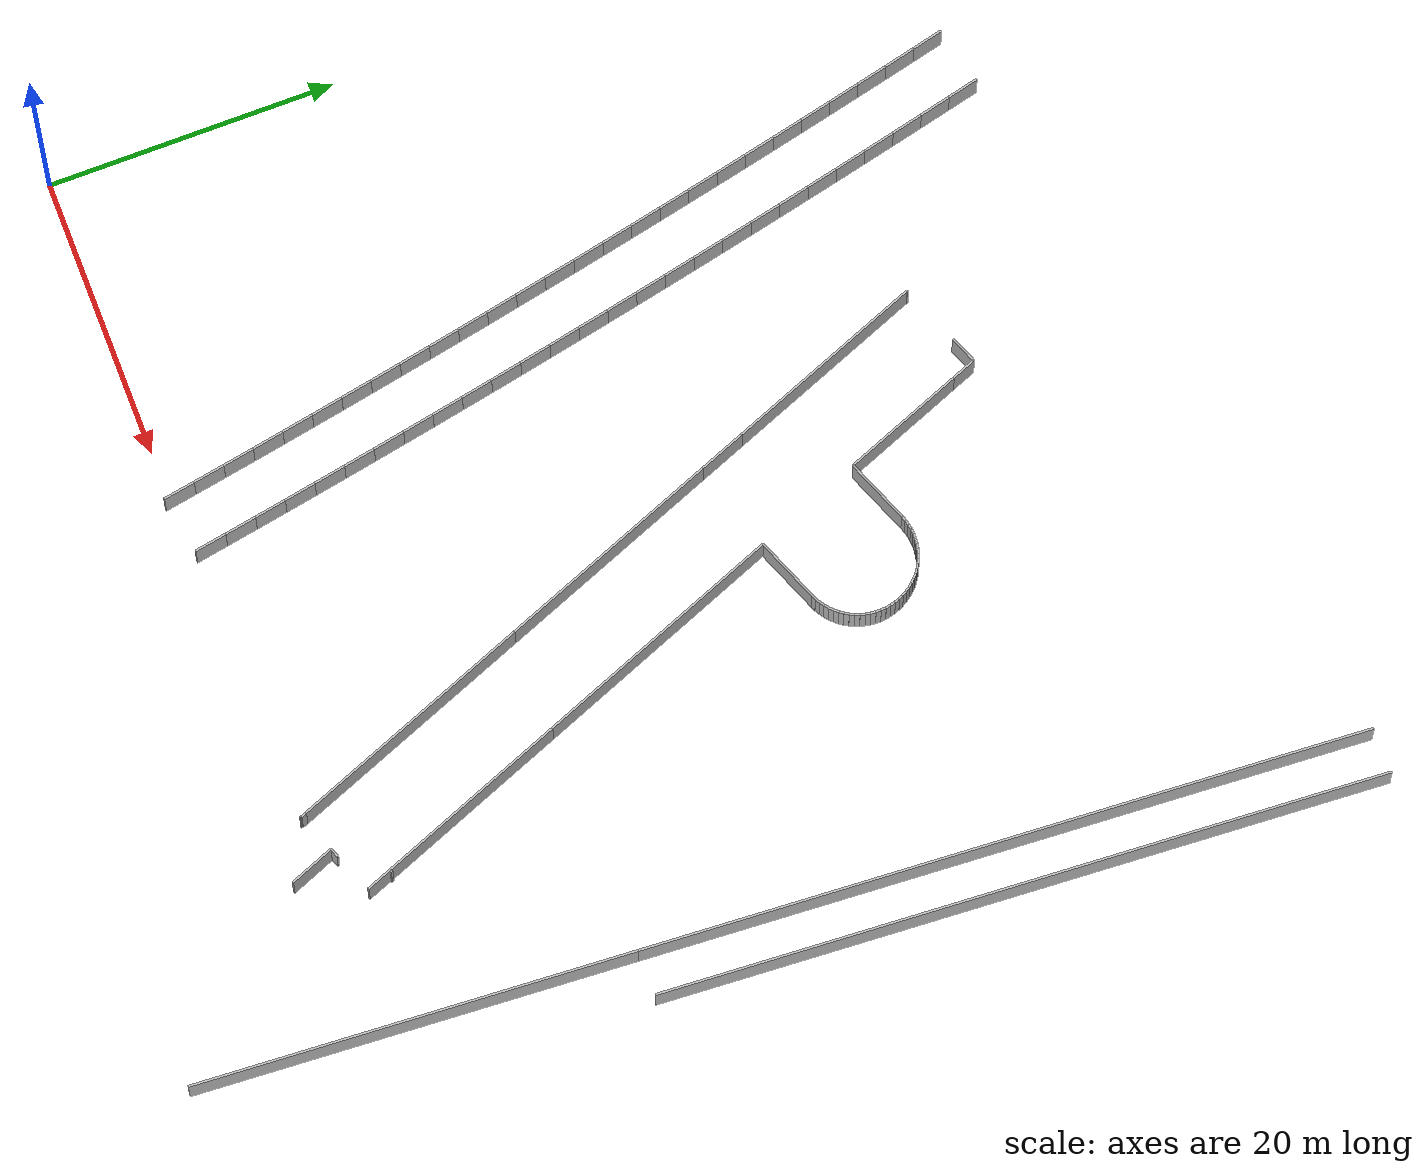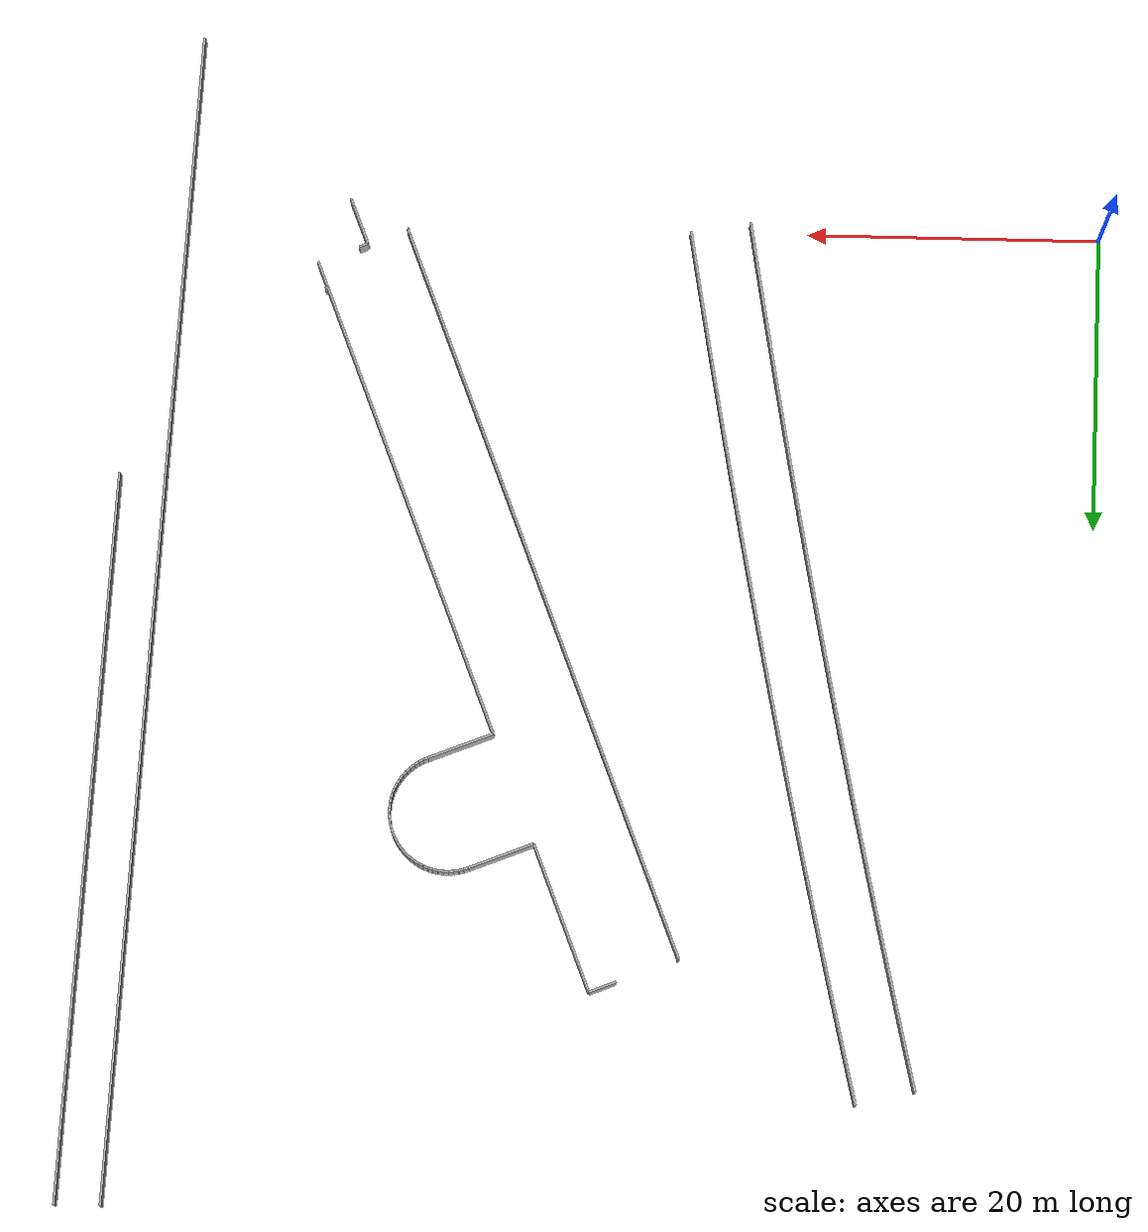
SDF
<sdf version="1.6">
 <model name="sps_2314">
  <static>1</static>
  <allow_auto_disable>0</allow_auto_disable>
  <link name="Wall80">
   <collision name="collision"><geometry><box><size>0.0881448 0.15 2.5</size></box></geometry></collision>
   <visual name="visual">
    <geometry><box><size>0.0881448 0.15 2.5</size></box></geometry>
    <transparency>0.0</transparency>
   </visual>
   <pose>47.404 0.571273 1.25 0 -0 0.37652</pose>
  </link>
  <link name="Wall156">
   <collision name="collision"><geometry><box><size>3.44415 0.15 2.5</size></box></geometry></collision>
   <visual name="visual">
    <geometry><box><size>3.44415 0.15 2.5</size></box></geometry>
    <transparency>0.0</transparency>
   </visual>
   <pose>33.8346 34.9045 1.25 0 0 -1.19321</pose>
  </link>
  <link name="Wall157">
   <collision name="collision"><geometry><box><size>16.5785 0.15 2.5</size></box></geometry></collision>
   <visual name="visual">
    <geometry><box><size>16.5785 0.15 2.5</size></box></geometry>
    <transparency>0.0</transparency>
   </visual>
   <pose>37.5255 25.5984 1.25 0 0 -1.19321</pose>
  </link>
  <link name="Wall158">
   <collision name="collision"><geometry><box><size>18.2175 0.15 2.5</size></box></geometry></collision>
   <visual name="visual">
    <geometry><box><size>18.2175 0.15 2.5</size></box></geometry>
    <transparency>0.0</transparency>
   </visual>
   <pose>43.9397 9.42598 1.25 0 0 -1.19321</pose>
  </link>
  <link name="Wall262">
   <collision name="collision"><geometry><box><size>3.33313 0.15 2.5</size></box></geometry></collision>
   <visual name="visual">
    <geometry><box><size>3.33313 0.15 2.5</size></box></geometry>
    <transparency>0.0</transparency>
   </visual>
   <pose>50.7768 0.116103 1.25 0 0 -1.18645</pose>
  </link>
  <link name="Wall322">
   <collision name="collision"><geometry><box><size>4.74975 0.15 2.5</size></box></geometry></collision>
   <visual name="visual">
    <geometry><box><size>4.74975 0.15 2.5</size></box></geometry>
    <transparency>0.0</transparency>
   </visual>
   <pose>39.9748 43.4954 1.25 0 0 -2.76404</pose>
  </link>
  <link name="Wall323">
   <collision name="collision"><geometry><box><size>0.65133 0.15 2.5</size></box></geometry></collision>
   <visual name="visual">
    <geometry><box><size>0.65133 0.15 2.5</size></box></geometry>
    <transparency>0.0</transparency>
   </visual>
   <pose>50.4546 1.7812 1.25 0 -0 0.377757</pose>
  </link>
  <link name="Wall387">
   <collision name="collision"><geometry><box><size>1.81498 0.15 2.5</size></box></geometry></collision>
   <visual name="visual">
    <geometry><box><size>1.81498 0.15 2.5</size></box></geometry>
    <transparency>0.0</transparency>
   </visual>
   <pose>34.1348 51.7776 1.25 0 0 -1.19318</pose>
  </link>
  <link name="Wall388">
   <collision name="collision"><geometry><box><size>8.94427 0.15 2.5</size></box></geometry></collision>
   <visual name="visual">
    <geometry><box><size>8.94427 0.15 2.5</size></box></geometry>
    <transparency>0.0</transparency>
   </visual>
   <pose>36.1183 46.7769 1.25 0 0 -1.19318</pose>
  </link>
  <link name="Wall389">
   <collision name="collision"><geometry><box><size>18.6084 0.15 2.5</size></box></geometry></collision>
   <visual name="visual">
    <geometry><box><size>18.6084 0.15 2.5</size></box></geometry>
    <transparency>0.0</transparency>
   </visual>
   <pose>44.1558 26.5383 1.25 0 0 -1.19216</pose>
  </link>
  <link name="Wall390">
   <collision name="collision"><geometry><box><size>16.0313 0.15 2.5</size></box></geometry></collision>
   <visual name="visual">
    <geometry><box><size>16.0313 0.15 2.5</size></box></geometry>
    <transparency>0.0</transparency>
   </visual>
   <pose>50.5581 10.4452 1.25 0 0 -1.19216</pose>
  </link>
  <link name="Wall488">
   <collision name="collision"><geometry><box><size>4.75138 0.15 2.5</size></box></geometry></collision>
   <visual name="visual">
    <geometry><box><size>4.75138 0.15 2.5</size></box></geometry>
    <transparency>0.0</transparency>
   </visual>
   <pose>42.9249 36.0592 1.25 0 -0 0.377513</pose>
  </link>
  <link name="Wall490">
   <collision name="collision"><geometry><box><size>0.233288 0.15 2.5</size></box></geometry></collision>
   <visual name="visual">
    <geometry><box><size>0.233288 0.15 2.5</size></box></geometry>
    <transparency>0.0</transparency>
   </visual>
   <pose>52.8953 4.79307 1.25 0 -0 0.377543</pose>
  </link>
  <link name="Wall585">
   <collision name="collision"><geometry><box><size>14.7591 0.15 2.5</size></box></geometry></collision>
   <visual name="visual">
    <geometry><box><size>14.7591 0.15 2.5</size></box></geometry>
    <transparency>0.0</transparency>
   </visual>
   <pose>30.4788 43.3649 1.25 0 0 -1.19318</pose>
  </link>
  <link name="Wall586">
   <collision name="collision"><geometry><box><size>1.98101 0.15 2.5</size></box></geometry></collision>
   <visual name="visual">
    <geometry><box><size>1.98101 0.15 2.5</size></box></geometry>
    <transparency>0.0</transparency>
   </visual>
   <pose>32.8796 52.2558 1.25 0 -0 0.377714</pose>
  </link>
  <link name="Wall587">
   <collision name="collision"><geometry><box><size>0.39949 0.15 2.5</size></box></geometry></collision>
   <visual name="visual">
    <geometry><box><size>0.39949 0.15 2.5</size></box></geometry>
    <transparency>0.0</transparency>
   </visual>
   <pose>47.3715 0.773177 1.25 0 0 -1.19355</pose>
  </link>
  <link name="Wall589">
   <collision name="collision"><geometry><box><size>50.0856 0.15 2.5</size></box></geometry></collision>
   <visual name="visual">
    <geometry><box><size>50.0856 0.15 2.5</size></box></geometry>
    <transparency>0.0</transparency>
   </visual>
   <pose>65.0047 42.8931 1.25 0 0 -1.62928</pose>
  </link>
  <link name="Wall590">
   <collision name="collision"><geometry><box><size>30.3164 0.15 2.5</size></box></geometry></collision>
   <visual name="visual">
    <geometry><box><size>30.3164 0.15 2.5</size></box></geometry>
    <transparency>0.0</transparency>
   </visual>
   <pose>62.6547 2.76079 1.25 0 0 -1.62928</pose>
  </link>
  <link name="Wall663">
   <collision name="collision"><geometry><box><size>0.119337 0.15 2.5</size></box></geometry></collision>
   <visual name="visual">
    <geometry><box><size>0.119337 0.15 2.5</size></box></geometry>
    <transparency>0.0</transparency>
   </visual>
   <pose>27.8133 50.2464 1.25 0 -0 0.375473</pose>
  </link>
  <link name="Wall668">
   <collision name="collision"><geometry><box><size>50.0856 0.15 2.5</size></box></geometry></collision>
   <visual name="visual">
    <geometry><box><size>50.0856 0.15 2.5</size></box></geometry>
    <transparency>0.0</transparency>
   </visual>
   <pose>68.1501 42.8931 1.25 0 0 -1.62929</pose>
  </link>
  <link name="Wall4661">
   <collision name="collision"><geometry><box><size>2.25472 0.15 2.5</size></box></geometry></collision>
   <visual name="visual">
    <geometry><box><size>2.25472 0.15 2.5</size></box></geometry>
    <transparency>0.0</transparency>
   </visual>
   <pose>27.8527 1.40709 1.25 0 -0 1.74643</pose>
  </link>
  <link name="Wall4662">
   <collision name="collision"><geometry><box><size>2.25462 0.15 2.5</size></box></geometry></collision>
   <visual name="visual">
    <geometry><box><size>2.25462 0.15 2.5</size></box></geometry>
    <transparency>0.0</transparency>
   </visual>
   <pose>27.456 3.6266 1.25 0 -0 1.74881</pose>
  </link>
  <link name="Wall4663">
   <collision name="collision"><geometry><box><size>2.25462 0.15 2.5</size></box></geometry></collision>
   <visual name="visual">
    <geometry><box><size>2.25462 0.15 2.5</size></box></geometry>
    <transparency>0.0</transparency>
   </visual>
   <pose>27.0541 5.84511 1.25 0 -0 1.75123</pose>
  </link>
  <link name="Wall4664">
   <collision name="collision"><geometry><box><size>2.25472 0.15 2.5</size></box></geometry></collision>
   <visual name="visual">
    <geometry><box><size>2.25472 0.15 2.5</size></box></geometry>
    <transparency>0.0</transparency>
   </visual>
   <pose>26.6469 8.0627 1.25 0 -0 1.75356</pose>
  </link>
  <link name="Wall4665">
   <collision name="collision"><geometry><box><size>2.25452 0.15 2.5</size></box></geometry></collision>
   <visual name="visual">
    <geometry><box><size>2.25452 0.15 2.5</size></box></geometry>
    <transparency>0.0</transparency>
   </visual>
   <pose>26.2345 10.2793 1.25 0 -0 1.75592</pose>
  </link>
  <link name="Wall4666">
   <collision name="collision"><geometry><box><size>2.25475 0.15 2.5</size></box></geometry></collision>
   <visual name="visual">
    <geometry><box><size>2.25475 0.15 2.5</size></box></geometry>
    <transparency>0.0</transparency>
   </visual>
   <pose>25.8169 12.4949 1.25 0 -0 1.75835</pose>
  </link>
  <link name="Wall4667">
   <collision name="collision"><geometry><box><size>2.25399 0.15 2.5</size></box></geometry></collision>
   <visual name="visual">
    <geometry><box><size>2.25399 0.15 2.5</size></box></geometry>
    <transparency>0.0</transparency>
   </visual>
   <pose>25.3937 14.7092 1.25 0 -0 1.76092</pose>
  </link>
  <link name="Wall4668">
   <collision name="collision"><geometry><box><size>2.2547 0.15 2.5</size></box></geometry></collision>
   <visual name="visual">
    <geometry><box><size>2.2547 0.15 2.5</size></box></geometry>
    <transparency>0.0</transparency>
   </visual>
   <pose>24.9654 16.9225 1.25 0 -0 1.76296</pose>
  </link>
  <link name="Wall4669">
   <collision name="collision"><geometry><box><size>2.2546 0.15 2.5</size></box></geometry></collision>
   <visual name="visual">
    <geometry><box><size>2.2546 0.15 2.5</size></box></geometry>
    <transparency>0.0</transparency>
   </visual>
   <pose>24.5321 19.1351 1.25 0 -0 1.76542</pose>
  </link>
  <link name="Wall4670">
   <collision name="collision"><geometry><box><size>2.25467 0.15 2.5</size></box></geometry></collision>
   <visual name="visual">
    <geometry><box><size>2.25467 0.15 2.5</size></box></geometry>
    <transparency>0.0</transparency>
   </visual>
   <pose>24.0933 21.3466 1.25 0 -0 1.76793</pose>
  </link>
  <link name="Wall4671">
   <collision name="collision"><geometry><box><size>2.25445 0.15 2.5</size></box></geometry></collision>
   <visual name="visual">
    <geometry><box><size>2.25445 0.15 2.5</size></box></geometry>
    <transparency>0.0</transparency>
   </visual>
   <pose>23.6492 23.557 1.25 0 -0 1.77021</pose>
  </link>
  <link name="Wall4672">
   <collision name="collision"><geometry><box><size>2.25471 0.15 2.5</size></box></geometry></collision>
   <visual name="visual">
    <geometry><box><size>2.25471 0.15 2.5</size></box></geometry>
    <transparency>0.0</transparency>
   </visual>
   <pose>23.2 25.7664 1.25 0 -0 1.77253</pose>
  </link>
  <link name="Wall4673">
   <collision name="collision"><geometry><box><size>2.25463 0.15 2.5</size></box></geometry></collision>
   <visual name="visual">
    <geometry><box><size>2.25463 0.15 2.5</size></box></geometry>
    <transparency>0.0</transparency>
   </visual>
   <pose>22.7456 27.9748 1.25 0 -0 1.77492</pose>
  </link>
  <link name="Wall4674">
   <collision name="collision"><geometry><box><size>2.25471 0.15 2.5</size></box></geometry></collision>
   <visual name="visual">
    <geometry><box><size>2.25471 0.15 2.5</size></box></geometry>
    <transparency>0.0</transparency>
   </visual>
   <pose>22.2858 30.1821 1.25 0 -0 1.77734</pose>
  </link>
  <link name="Wall4675">
   <collision name="collision"><geometry><box><size>2.25465 0.15 2.5</size></box></geometry></collision>
   <visual name="visual">
    <geometry><box><size>2.25465 0.15 2.5</size></box></geometry>
    <transparency>0.0</transparency>
   </visual>
   <pose>21.8209 32.3883 1.25 0 -0 1.7797</pose>
  </link>
  <link name="Wall4676">
   <collision name="collision"><geometry><box><size>2.25454 0.15 2.5</size></box></geometry></collision>
   <visual name="visual">
    <geometry><box><size>2.25454 0.15 2.5</size></box></geometry>
    <transparency>0.0</transparency>
   </visual>
   <pose>21.3507 34.5933 1.25 0 -0 1.78207</pose>
  </link>
  <link name="Wall4677">
   <collision name="collision"><geometry><box><size>2.25467 0.15 2.5</size></box></geometry></collision>
   <visual name="visual">
    <geometry><box><size>2.25467 0.15 2.5</size></box></geometry>
    <transparency>0.0</transparency>
   </visual>
   <pose>20.8752 36.7972 1.25 0 -0 1.78452</pose>
  </link>
  <link name="Wall4678">
   <collision name="collision"><geometry><box><size>2.25482 0.15 2.5</size></box></geometry></collision>
   <visual name="visual">
    <geometry><box><size>2.25482 0.15 2.5</size></box></geometry>
    <transparency>0.0</transparency>
   </visual>
   <pose>20.3944 39.0001 1.25 0 -0 1.78686</pose>
  </link>
  <link name="Wall4679">
   <collision name="collision"><geometry><box><size>2.25435 0.15 2.5</size></box></geometry></collision>
   <visual name="visual">
    <geometry><box><size>2.25435 0.15 2.5</size></box></geometry>
    <transparency>0.0</transparency>
   </visual>
   <pose>19.9085 41.2017 1.25 0 -0 1.78918</pose>
  </link>
  <link name="Wall4680">
   <collision name="collision"><geometry><box><size>2.25458 0.15 2.5</size></box></geometry></collision>
   <visual name="visual">
    <geometry><box><size>2.25458 0.15 2.5</size></box></geometry>
    <transparency>0.0</transparency>
   </visual>
   <pose>19.4174 43.402 1.25 0 -0 1.79162</pose>
  </link>
  <link name="Wall4681">
   <collision name="collision"><geometry><box><size>2.25469 0.15 2.5</size></box></geometry></collision>
   <visual name="visual">
    <geometry><box><size>2.25469 0.15 2.5</size></box></geometry>
    <transparency>0.0</transparency>
   </visual>
   <pose>18.921 45.6013 1.25 0 -0 1.79394</pose>
  </link>
  <link name="Wall4682">
   <collision name="collision"><geometry><box><size>2.25436 0.15 2.5</size></box></geometry></collision>
   <visual name="visual">
    <geometry><box><size>2.25436 0.15 2.5</size></box></geometry>
    <transparency>0.0</transparency>
   </visual>
   <pose>18.4193 47.7993 1.25 0 -0 1.79645</pose>
  </link>
  <link name="Wall4683">
   <collision name="collision"><geometry><box><size>2.25453 0.15 2.5</size></box></geometry></collision>
   <visual name="visual">
    <geometry><box><size>2.25453 0.15 2.5</size></box></geometry>
    <transparency>0.0</transparency>
   </visual>
   <pose>17.9123 49.996 1.25 0 -0 1.79882</pose>
  </link>
  <link name="Wall4684">
   <collision name="collision"><geometry><box><size>2.25472 0.15 2.5</size></box></geometry></collision>
   <visual name="visual">
    <geometry><box><size>2.25472 0.15 2.5</size></box></geometry>
    <transparency>0.0</transparency>
   </visual>
   <pose>17.4002 52.1917 1.25 0 -0 1.80097</pose>
  </link>
  <link name="Wall4685">
   <collision name="collision"><geometry><box><size>2.25456 0.15 2.5</size></box></geometry></collision>
   <visual name="visual">
    <geometry><box><size>2.25456 0.15 2.5</size></box></geometry>
    <transparency>0.0</transparency>
   </visual>
   <pose>16.883 54.3862 1.25 0 -0 1.80352</pose>
  </link>
  <link name="Wall4686">
   <collision name="collision"><geometry><box><size>2.25455 0.15 2.5</size></box></geometry></collision>
   <visual name="visual">
    <geometry><box><size>2.25455 0.15 2.5</size></box></geometry>
    <transparency>0.0</transparency>
   </visual>
   <pose>16.3606 56.5794 1.25 0 -0 1.80583</pose>
  </link>
  <link name="Wall4687">
   <collision name="collision"><geometry><box><size>2.25468 0.15 2.5</size></box></geometry></collision>
   <visual name="visual">
    <geometry><box><size>2.25468 0.15 2.5</size></box></geometry>
    <transparency>0.0</transparency>
   </visual>
   <pose>15.8328 58.7714 1.25 0 -0 1.80826</pose>
  </link>
  <link name="Wall6386">
   <collision name="collision"><geometry><box><size>2.24468 0.15 2.5</size></box></geometry></collision>
   <visual name="visual">
    <geometry><box><size>2.24468 0.15 2.5</size></box></geometry>
    <transparency>0.0</transparency>
   </visual>
   <pose>23.7769 0.683394 1.25 0 -0 1.74643</pose>
  </link>
  <link name="Wall6387">
   <collision name="collision"><geometry><box><size>2.24487 0.15 2.5</size></box></geometry></collision>
   <visual name="visual">
    <geometry><box><size>2.24487 0.15 2.5</size></box></geometry>
    <transparency>0.0</transparency>
   </visual>
   <pose>23.3821 2.89317 1.25 0 -0 1.74876</pose>
  </link>
  <link name="Wall6388">
   <collision name="collision"><geometry><box><size>2.2449 0.15 2.5</size></box></geometry></collision>
   <visual name="visual">
    <geometry><box><size>2.2449 0.15 2.5</size></box></geometry>
    <transparency>0.0</transparency>
   </visual>
   <pose>22.982 5.1021 1.25 0 -0 1.75127</pose>
  </link>
  <link name="Wall6389">
   <collision name="collision"><geometry><box><size>2.24452 0.15 2.5</size></box></geometry></collision>
   <visual name="visual">
    <geometry><box><size>2.24452 0.15 2.5</size></box></geometry>
    <transparency>0.0</transparency>
   </visual>
   <pose>22.5766 7.30989 1.25 0 -0 1.75351</pose>
  </link>
  <link name="Wall6390">
   <collision name="collision"><geometry><box><size>2.24496 0.15 2.5</size></box></geometry></collision>
   <visual name="visual">
    <geometry><box><size>2.24496 0.15 2.5</size></box></geometry>
    <transparency>0.0</transparency>
   </visual>
   <pose>22.166 9.51677 1.25 0 -0 1.75591</pose>
  </link>
  <link name="Wall6391">
   <collision name="collision"><geometry><box><size>2.24478 0.15 2.5</size></box></geometry></collision>
   <visual name="visual">
    <geometry><box><size>2.24478 0.15 2.5</size></box></geometry>
    <transparency>0.0</transparency>
   </visual>
   <pose>21.7502 11.7228 1.25 0 -0 1.75828</pose>
  </link>
  <link name="Wall6392">
   <collision name="collision"><geometry><box><size>2.24477 0.15 2.5</size></box></geometry></collision>
   <visual name="visual">
    <geometry><box><size>2.24477 0.15 2.5</size></box></geometry>
    <transparency>0.0</transparency>
   </visual>
   <pose>21.3292 13.9277 1.25 0 -0 1.76072</pose>
  </link>
  <link name="Wall6393">
   <collision name="collision"><geometry><box><size>2.24441 0.15 2.5</size></box></geometry></collision>
   <visual name="visual">
    <geometry><box><size>2.24441 0.15 2.5</size></box></geometry>
    <transparency>0.0</transparency>
   </visual>
   <pose>20.9025 16.1314 1.25 0 -0 1.76332</pose>
  </link>
  <link name="Wall6394">
   <collision name="collision"><geometry><box><size>2.24456 0.15 2.5</size></box></geometry></collision>
   <visual name="visual">
    <geometry><box><size>2.24456 0.15 2.5</size></box></geometry>
    <transparency>0.0</transparency>
   </visual>
   <pose>20.4708 18.334 1.25 0 -0 1.76536</pose>
  </link>
  <link name="Wall6395">
   <collision name="collision"><geometry><box><size>2.24507 0.15 2.5</size></box></geometry></collision>
   <visual name="visual">
    <geometry><box><size>2.24507 0.15 2.5</size></box></geometry>
    <transparency>0.0</transparency>
   </visual>
   <pose>20.034 20.5359 1.25 0 -0 1.76789</pose>
  </link>
  <link name="Wall6396">
   <collision name="collision"><geometry><box><size>2.24466 0.15 2.5</size></box></geometry></collision>
   <visual name="visual">
    <geometry><box><size>2.24466 0.15 2.5</size></box></geometry>
    <transparency>0.0</transparency>
   </visual>
   <pose>19.5919 22.7368 1.25 0 -0 1.77018</pose>
  </link>
  <link name="Wall6397">
   <collision name="collision"><geometry><box><size>2.24474 0.15 2.5</size></box></geometry></collision>
   <visual name="visual">
    <geometry><box><size>2.24474 0.15 2.5</size></box></geometry>
    <transparency>0.0</transparency>
   </visual>
   <pose>19.1448 24.9365 1.25 0 -0 1.77253</pose>
  </link>
  <link name="Wall6398">
   <collision name="collision"><geometry><box><size>2.24482 0.15 2.5</size></box></geometry></collision>
   <visual name="visual">
    <geometry><box><size>2.24482 0.15 2.5</size></box></geometry>
    <transparency>0.0</transparency>
   </visual>
   <pose>18.6923 27.1352 1.25 0 -0 1.77499</pose>
  </link>
  <link name="Wall6399">
   <collision name="collision"><geometry><box><size>2.24493 0.15 2.5</size></box></geometry></collision>
   <visual name="visual">
    <geometry><box><size>2.24493 0.15 2.5</size></box></geometry>
    <transparency>0.0</transparency>
   </visual>
   <pose>18.2345 29.3329 1.25 0 -0 1.77737</pose>
  </link>
  <link name="Wall6400">
   <collision name="collision"><geometry><box><size>2.24458 0.15 2.5</size></box></geometry></collision>
   <visual name="visual">
    <geometry><box><size>2.24458 0.15 2.5</size></box></geometry>
    <transparency>0.0</transparency>
   </visual>
   <pose>17.7715 31.5294 1.25 0 -0 1.77965</pose>
  </link>
  <link name="Wall6401">
   <collision name="collision"><geometry><box><size>2.24497 0.15 2.5</size></box></geometry></collision>
   <visual name="visual">
    <geometry><box><size>2.24497 0.15 2.5</size></box></geometry>
    <transparency>0.0</transparency>
   </visual>
   <pose>17.3033 33.7248 1.25 0 -0 1.78217</pose>
  </link>
  <link name="Wall6402">
   <collision name="collision"><geometry><box><size>2.24461 0.15 2.5</size></box></geometry></collision>
   <visual name="visual">
    <geometry><box><size>2.24461 0.15 2.5</size></box></geometry>
    <transparency>0.0</transparency>
   </visual>
   <pose>16.8299 35.9191 1.25 0 -0 1.78438</pose>
  </link>
  <link name="Wall6403">
   <collision name="collision"><geometry><box><size>2.24481 0.15 2.5</size></box></geometry></collision>
   <visual name="visual">
    <geometry><box><size>2.24481 0.15 2.5</size></box></geometry>
    <transparency>0.0</transparency>
   </visual>
   <pose>16.3515 38.1122 1.25 0 -0 1.78683</pose>
  </link>
  <link name="Wall6404">
   <collision name="collision"><geometry><box><size>2.24491 0.15 2.5</size></box></geometry></collision>
   <visual name="visual">
    <geometry><box><size>2.24491 0.15 2.5</size></box></geometry>
    <transparency>0.0</transparency>
   </visual>
   <pose>15.8677 40.3043 1.25 0 -0 1.78919</pose>
  </link>
  <link name="Wall6405">
   <collision name="collision"><geometry><box><size>2.24473 0.15 2.5</size></box></geometry></collision>
   <visual name="visual">
    <geometry><box><size>2.24473 0.15 2.5</size></box></geometry>
    <transparency>0.0</transparency>
   </visual>
   <pose>15.3786 42.4952 1.25 0 -0 1.79169</pose>
  </link>
  <link name="Wall6406">
   <collision name="collision"><geometry><box><size>2.2447 0.15 2.5</size></box></geometry></collision>
   <visual name="visual">
    <geometry><box><size>2.2447 0.15 2.5</size></box></geometry>
    <transparency>0.0</transparency>
   </visual>
   <pose>14.8842 44.6848 1.25 0 -0 1.79398</pose>
  </link>
  <link name="Wall6407">
   <collision name="collision"><geometry><box><size>2.24483 0.15 2.5</size></box></geometry></collision>
   <visual name="visual">
    <geometry><box><size>2.24483 0.15 2.5</size></box></geometry>
    <transparency>0.0</transparency>
   </visual>
   <pose>14.3848 46.8733 1.25 0 -0 1.79631</pose>
  </link>
  <link name="Wall6408">
   <collision name="collision"><geometry><box><size>2.24446 0.15 2.5</size></box></geometry></collision>
   <visual name="visual">
    <geometry><box><size>2.24446 0.15 2.5</size></box></geometry>
    <transparency>0.0</transparency>
   </visual>
   <pose>13.8803 49.0605 1.25 0 -0 1.79874</pose>
  </link>
  <link name="Wall6409">
   <collision name="collision"><geometry><box><size>2.24468 0.15 2.5</size></box></geometry></collision>
   <visual name="visual">
    <geometry><box><size>2.24468 0.15 2.5</size></box></geometry>
    <transparency>0.0</transparency>
   </visual>
   <pose>13.3704 51.2464 1.25 0 -0 1.80121</pose>
  </link>
  <link name="Wall6410">
   <collision name="collision"><geometry><box><size>2.24489 0.15 2.5</size></box></geometry></collision>
   <visual name="visual">
    <geometry><box><size>2.24489 0.15 2.5</size></box></geometry>
    <transparency>0.0</transparency>
   </visual>
   <pose>12.8553 53.4313 1.25 0 -0 1.80336</pose>
  </link>
  <link name="Wall6411">
   <collision name="collision"><geometry><box><size>2.24476 0.15 2.5</size></box></geometry></collision>
   <visual name="visual">
    <geometry><box><size>2.24476 0.15 2.5</size></box></geometry>
    <transparency>0.0</transparency>
   </visual>
   <pose>12.3351 55.615 1.25 0 -0 1.80595</pose>
  </link>
  <link name="Wall6412">
   <collision name="collision"><geometry><box><size>2.24475 0.15 2.5</size></box></geometry></collision>
   <visual name="visual">
    <geometry><box><size>2.24475 0.15 2.5</size></box></geometry>
    <transparency>0.0</transparency>
   </visual>
   <pose>11.8097 57.7974 1.25 0 -0 1.80813</pose>
  </link>
  <link name="Wall7351">
   <collision name="collision"><geometry><box><size>0.348288 0.15 2.5</size></box></geometry></collision>
   <visual name="visual">
    <geometry><box><size>0.348288 0.15 2.5</size></box></geometry>
    <transparency>0.0</transparency>
   </visual>
   <pose>45.292 37.0066 1.25 0 -0 0.424452</pose>
  </link>
  <link name="Wall7352">
   <collision name="collision"><geometry><box><size>0.348329 0.15 2.5</size></box></geometry></collision>
   <visual name="visual">
    <geometry><box><size>0.348329 0.15 2.5</size></box></geometry>
    <transparency>0.0</transparency>
   </visual>
   <pose>45.6026 37.1635 1.25 0 -0 0.510996</pose>
  </link>
  <link name="Wall7353">
   <collision name="collision"><geometry><box><size>0.348315 0.15 2.5</size></box></geometry></collision>
   <visual name="visual">
    <geometry><box><size>0.348315 0.15 2.5</size></box></geometry>
    <transparency>0.0</transparency>
   </visual>
   <pose>45.8984 37.3468 1.25 0 -0 0.598452</pose>
  </link>
  <link name="Wall7354">
   <collision name="collision"><geometry><box><size>0.348333 0.15 2.5</size></box></geometry></collision>
   <visual name="visual">
    <geometry><box><size>0.348333 0.15 2.5</size></box></geometry>
    <transparency>0.0</transparency>
   </visual>
   <pose>46.1771 37.5552 1.25 0 -0 0.685742</pose>
  </link>
  <link name="Wall7355">
   <collision name="collision"><geometry><box><size>0.348231 0.15 2.5</size></box></geometry></collision>
   <visual name="visual">
    <geometry><box><size>0.348231 0.15 2.5</size></box></geometry>
    <transparency>0.0</transparency>
   </visual>
   <pose>46.4365 37.787 1.25 0 -0 0.772508</pose>
  </link>
  <link name="Wall7356">
   <collision name="collision"><geometry><box><size>0.348428 0.15 2.5</size></box></geometry></collision>
   <visual name="visual">
    <geometry><box><size>0.348428 0.15 2.5</size></box></geometry>
    <transparency>0.0</transparency>
   </visual>
   <pose>46.6749 38.0405 1.25 0 -0 0.859662</pose>
  </link>
  <link name="Wall7357">
   <collision name="collision"><geometry><box><size>0.348312 0.15 2.5</size></box></geometry></collision>
   <visual name="visual">
    <geometry><box><size>0.348312 0.15 2.5</size></box></geometry>
    <transparency>0.0</transparency>
   </visual>
   <pose>46.8903 38.3139 1.25 0 -0 0.947308</pose>
  </link>
  <link name="Wall7358">
   <collision name="collision"><geometry><box><size>0.348254 0.15 2.5</size></box></geometry></collision>
   <visual name="visual">
    <geometry><box><size>0.348254 0.15 2.5</size></box></geometry>
    <transparency>0.0</transparency>
   </visual>
   <pose>47.0811 38.6049 1.25 0 -0 1.03356</pose>
  </link>
  <link name="Wall7359">
   <collision name="collision"><geometry><box><size>0.348245 0.15 2.5</size></box></geometry></collision>
   <visual name="visual">
    <geometry><box><size>0.348245 0.15 2.5</size></box></geometry>
    <transparency>0.0</transparency>
   </visual>
   <pose>47.246 38.9113 1.25 0 -0 1.12094</pose>
  </link>
  <link name="Wall7360">
   <collision name="collision"><geometry><box><size>0.348461 0.15 2.5</size></box></geometry></collision>
   <visual name="visual">
    <geometry><box><size>0.348461 0.15 2.5</size></box></geometry>
    <transparency>0.0</transparency>
   </visual>
   <pose>47.3835 39.231 1.25 0 -0 1.20821</pose>
  </link>
  <link name="Wall7361">
   <collision name="collision"><geometry><box><size>0.348299 0.15 2.5</size></box></geometry></collision>
   <visual name="visual">
    <geometry><box><size>0.348299 0.15 2.5</size></box></geometry>
    <transparency>0.0</transparency>
   </visual>
   <pose>47.4926 39.5615 1.25 0 -0 1.29572</pose>
  </link>
  <link name="Wall7362">
   <collision name="collision"><geometry><box><size>0.348231 0.15 2.5</size></box></geometry></collision>
   <visual name="visual">
    <geometry><box><size>0.348231 0.15 2.5</size></box></geometry>
    <transparency>0.0</transparency>
   </visual>
   <pose>47.5726 39.9001 1.25 0 -0 1.38196</pose>
  </link>
  <link name="Wall7363">
   <collision name="collision"><geometry><box><size>0.348342 0.15 2.5</size></box></geometry></collision>
   <visual name="visual">
    <geometry><box><size>0.348342 0.15 2.5</size></box></geometry>
    <transparency>0.0</transparency>
   </visual>
   <pose>47.6229 40.2444 1.25 0 -0 1.46952</pose>
  </link>
  <link name="Wall7364">
   <collision name="collision"><geometry><box><size>0.348425 0.15 2.5</size></box></geometry></collision>
   <visual name="visual">
    <geometry><box><size>0.348425 0.15 2.5</size></box></geometry>
    <transparency>0.0</transparency>
   </visual>
   <pose>47.643 40.5919 1.25 0 -0 1.55643</pose>
  </link>
  <link name="Wall7365">
   <collision name="collision"><geometry><box><size>0.348156 0.15 2.5</size></box></geometry></collision>
   <visual name="visual">
    <geometry><box><size>0.348156 0.15 2.5</size></box></geometry>
    <transparency>0.0</transparency>
   </visual>
   <pose>47.6328 40.9397 1.25 0 -0 1.64379</pose>
  </link>
  <link name="Wall7366">
   <collision name="collision"><geometry><box><size>0.348459 0.15 2.5</size></box></geometry></collision>
   <visual name="visual">
    <geometry><box><size>0.348459 0.15 2.5</size></box></geometry>
    <transparency>0.0</transparency>
   </visual>
   <pose>47.5923 41.2853 1.25 0 -0 1.73105</pose>
  </link>
  <link name="Wall7367">
   <collision name="collision"><geometry><box><size>0.348172 0.15 2.5</size></box></geometry></collision>
   <visual name="visual">
    <geometry><box><size>0.348172 0.15 2.5</size></box></geometry>
    <transparency>0.0</transparency>
   </visual>
   <pose>47.5219 41.6261 1.25 0 -0 1.81803</pose>
  </link>
  <link name="Wall7368">
   <collision name="collision"><geometry><box><size>0.348467 0.15 2.5</size></box></geometry></collision>
   <visual name="visual">
    <geometry><box><size>0.348467 0.15 2.5</size></box></geometry>
    <transparency>0.0</transparency>
   </visual>
   <pose>47.4222 41.9595 1.25 0 -0 1.90468</pose>
  </link>
  <link name="Wall7369">
   <collision name="collision"><geometry><box><size>0.348252 0.15 2.5</size></box></geometry></collision>
   <visual name="visual">
    <geometry><box><size>0.348252 0.15 2.5</size></box></geometry>
    <transparency>0.0</transparency>
   </visual>
   <pose>47.2939 42.283 1.25 0 -0 1.99203</pose>
  </link>
  <link name="Wall7370">
   <collision name="collision"><geometry><box><size>0.348292 0.15 2.5</size></box></geometry></collision>
   <visual name="visual">
    <geometry><box><size>0.348292 0.15 2.5</size></box></geometry>
    <transparency>0.0</transparency>
   </visual>
   <pose>47.1379 42.594 1.25 0 -0 2.07944</pose>
  </link>
  <link name="Wall7371">
   <collision name="collision"><geometry><box><size>0.348374 0.15 2.5</size></box></geometry></collision>
   <visual name="visual">
    <geometry><box><size>0.348374 0.15 2.5</size></box></geometry>
    <transparency>0.0</transparency>
   </visual>
   <pose>46.9553 42.8903 1.25 0 -0 2.16638</pose>
  </link>
  <link name="Wall7372">
   <collision name="collision"><geometry><box><size>0.348305 0.15 2.5</size></box></geometry></collision>
   <visual name="visual">
    <geometry><box><size>0.348305 0.15 2.5</size></box></geometry>
    <transparency>0.0</transparency>
   </visual>
   <pose>46.7477 43.1696 1.25 0 -0 2.25367</pose>
  </link>
  <link name="Wall7373">
   <collision name="collision"><geometry><box><size>0.348332 0.15 2.5</size></box></geometry></collision>
   <visual name="visual">
    <geometry><box><size>0.348332 0.15 2.5</size></box></geometry>
    <transparency>0.0</transparency>
   </visual>
   <pose>46.5167 43.4298 1.25 0 -0 2.34033</pose>
  </link>
  <link name="Wall7374">
   <collision name="collision"><geometry><box><size>0.348227 0.15 2.5</size></box></geometry></collision>
   <visual name="visual">
    <geometry><box><size>0.348227 0.15 2.5</size></box></geometry>
    <transparency>0.0</transparency>
   </visual>
   <pose>46.2639 43.6689 1.25 0 -0 2.42764</pose>
  </link>
  <link name="Wall7375">
   <collision name="collision"><geometry><box><size>0.348325 0.15 2.5</size></box></geometry></collision>
   <visual name="visual">
    <geometry><box><size>0.348325 0.15 2.5</size></box></geometry>
    <transparency>0.0</transparency>
   </visual>
   <pose>45.9913 43.8851 1.25 0 -0 2.51446</pose>
  </link>
  <link name="Wall7376">
   <collision name="collision"><geometry><box><size>0.348262 0.15 2.5</size></box></geometry></collision>
   <visual name="visual">
    <geometry><box><size>0.348262 0.15 2.5</size></box></geometry>
    <transparency>0.0</transparency>
   </visual>
   <pose>45.7009 44.0768 1.25 0 -0 2.60192</pose>
  </link>
  <link name="Wall7377">
   <collision name="collision"><geometry><box><size>0.348341 0.15 2.5</size></box></geometry></collision>
   <visual name="visual">
    <geometry><box><size>0.348341 0.15 2.5</size></box></geometry>
    <transparency>0.0</transparency>
   </visual>
   <pose>45.3949 44.2425 1.25 0 -0 2.68876</pose>
  </link>
  <link name="Wall7378">
   <collision name="collision"><geometry><box><size>0.348345 0.15 2.5</size></box></geometry></collision>
   <visual name="visual">
    <geometry><box><size>0.348345 0.15 2.5</size></box></geometry>
    <transparency>0.0</transparency>
   </visual>
   <pose>45.0756 44.3809 1.25 0 -0 2.77644</pose>
  </link>
  <link name="Wall7379">
   <collision name="collision"><geometry><box><size>0.348457 0.15 2.5</size></box></geometry></collision>
   <visual name="visual">
    <geometry><box><size>0.348457 0.15 2.5</size></box></geometry>
    <transparency>0.0</transparency>
   </visual>
   <pose>44.7454 44.491 1.25 0 -0 2.863</pose>
  </link>
  <link name="Wall7380">
   <collision name="collision"><geometry><box><size>0.348153 0.15 2.5</size></box></geometry></collision>
   <visual name="visual">
    <geometry><box><size>0.348153 0.15 2.5</size></box></geometry>
    <transparency>0.0</transparency>
   </visual>
   <pose>44.4069 44.572 1.25 0 -0 2.95021</pose>
  </link>
  <link name="Wall7381">
   <collision name="collision"><geometry><box><size>0.34826 0.15 2.5</size></box></geometry></collision>
   <visual name="visual">
    <geometry><box><size>0.34826 0.15 2.5</size></box></geometry>
    <transparency>0.0</transparency>
   </visual>
   <pose>44.0629 44.6232 1.25 0 -0 3.03748</pose>
  </link>
  <link name="Wall7382">
   <collision name="collision"><geometry><box><size>0.34844 0.15 2.5</size></box></geometry></collision>
   <visual name="visual">
    <geometry><box><size>0.34844 0.15 2.5</size></box></geometry>
    <transparency>0.0</transparency>
   </visual>
   <pose>43.7155 44.6443 1.25 0 -0 3.12443</pose>
  </link>
  <link name="Wall7383">
   <collision name="collision"><geometry><box><size>0.348269 0.15 2.5</size></box></geometry></collision>
   <visual name="visual">
    <geometry><box><size>0.348269 0.15 2.5</size></box></geometry>
    <transparency>0.0</transparency>
   </visual>
   <pose>43.3676 44.6351 1.25 0 0 -3.07143</pose>
  </link>
  <link name="Wall7384">
   <collision name="collision"><geometry><box><size>0.348295 0.15 2.5</size></box></geometry></collision>
   <visual name="visual">
    <geometry><box><size>0.348295 0.15 2.5</size></box></geometry>
    <transparency>0.0</transparency>
   </visual>
   <pose>43.0219 44.5956 1.25 0 0 -2.98428</pose>
  </link>
  <link name="Wall7385">
   <collision name="collision"><geometry><box><size>0.348305 0.15 2.5</size></box></geometry></collision>
   <visual name="visual">
    <geometry><box><size>0.348305 0.15 2.5</size></box></geometry>
    <transparency>0.0</transparency>
   </visual>
   <pose>42.6809 44.5263 1.25 0 0 -2.89789</pose>
  </link>
  <link name="Wall7386">
   <collision name="collision"><geometry><box><size>0.348381 0.15 2.5</size></box></geometry></collision>
   <visual name="visual">
    <geometry><box><size>0.348381 0.15 2.5</size></box></geometry>
    <transparency>0.0</transparency>
   </visual>
   <pose>42.3472 44.4276 1.25 0 0 -2.81004</pose>
  </link>
 </model>
</sdf>
